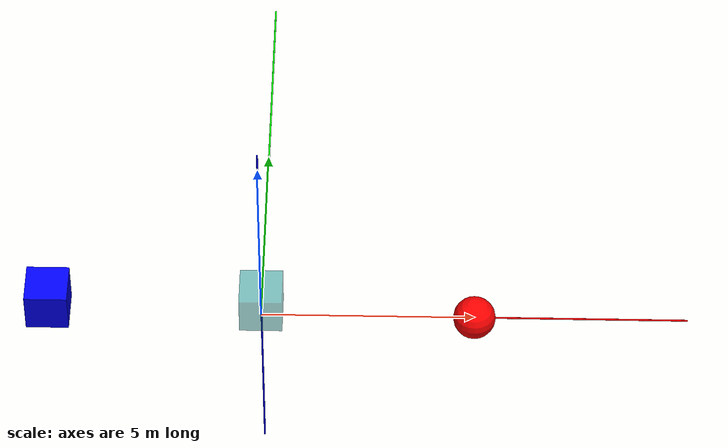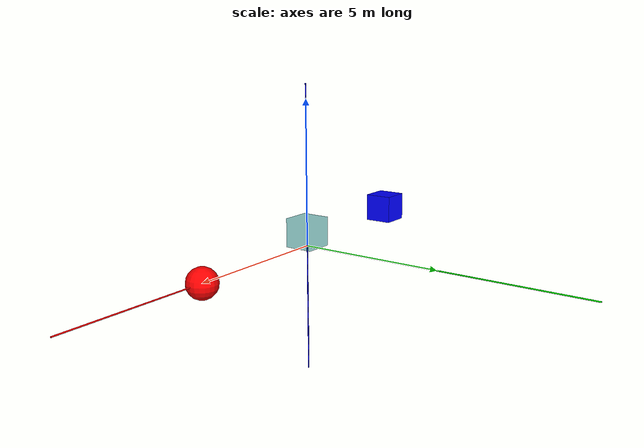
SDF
<?xml version="1.0" ?>
<sdf version="1.8">

    <!--
    To run the gazebo sim from the bridge
    gz sim -v 4 -r src/avoa3d/sdf/single_static.sdf
    -->

    <world name="3d_world">

        <physics name="1ms" type="ode">
            <max_step_size>0.001</max_step_size>
            <real_time_factor>1.0</real_time_factor>
            <real_time_update_rate>1000.0</real_time_update_rate>
        </physics>
        <gravity>0 0 0</gravity> <!--!AAAAAAAAAAA -->

        <plugin
            filename="gz-sim-physics-system"
            name="gz::sim::v8::systems::Physics">
        </plugin>
        <plugin
            filename="libignition-gazebo-user-commands-system.so"
            name="ignition::gazebo::systems::UserCommands">
        </plugin>
        <plugin
            filename="gz-sim-scene-broadcaster-system"
            name="gz::sim::systems::SceneBroadcaster">
        </plugin>

        <model name="world_frame">
            <static>true</static>
            <pose>0 0 0 0 0 0</pose>
            <link name="world_link">
                <!-- X axis -->
                <visual name="x_axis">
                    <geometry>
                        <cylinder>
                            <radius>0.02</radius>
                            <length>10.0</length>
                        </cylinder>
                    </geometry>
                    <material>
                        <ambient>1.0 0.0 0.0 1</ambient>
                        <diffuse>1.0 0.0 0.0 1</diffuse>  <!--red is X-->
                        <specular>1.0 0.0 0.0 1</specular>
                    </material>
                    <pose>5 0 0 0 1.5708 0</pose>
                </visual>

                <!-- Y axis -->
                <visual name="y_axis">
                    <geometry>
                        <cylinder>
                            <radius>0.02</radius>
                            <length>10.0</length>
                        </cylinder>
                    </geometry>
                    <material>
                        <ambient>0.0 1.0 0.0 1</ambient>
                        <diffuse>0.0 1.0 0.0 1</diffuse>   <!--green is Y-->
                        <specular>0.0 1.0 0.0 1</specular>
                    </material>
                    <pose>0 5 0 1.5708 0 0</pose>
                </visual>

                <!-- Z axis -->
                <visual name="z_axis">
                    <geometry>
                        <cylinder>
                            <radius>0.02</radius>
                            <length>10.0</length>
                        </cylinder>
                    </geometry>
                    <material>
                        <ambient>0.0 0.0 1.0 1</ambient>
                        <diffuse>0.0 0.0 1.0 1</diffuse>  <!--blue is Z-->
                        <specular>0.0 0.0 1.0 1</specular>
                    </material>
                    <pose>0 0 0.5 0 0 0</pose>
                </visual>
            </link>
        </model>

        <light type="directional" name="sun">
            <cast_shadows>true</cast_shadows>
            <pose>0 0 10 0 0 0</pose>
            <diffuse>0.8 0.8 0.8 1</diffuse>
            <specular>0.2 0.2 0.2 1</specular>
            <attenuation>
                <range>1000</range>
                <constant>0.9</constant>
                <linear>0.01</linear>
                <quadratic>0.001</quadratic>
            </attenuation>
            <direction>-0.5 0.1 -0.9</direction>
        </light>

        <!--!AGENTE -->
        <model name='agente' canonical_link='chassis'>
            <pose relative_to='world'>-5.0 0 0.5 0 0 0</pose> <!-- Raised z-position -->
            <link name='chassis'>
                <pose relative_to='__model__'>0.0 0 0.0 0 0 0</pose>
                <inertial>
                    <mass>1.14395</mass>
                    <inertia>
                        <ixx>0.095329</ixx>
                        <ixy>0</ixy>
                        <ixz>0</ixz>
                        <iyy>0.381317</iyy>
                        <iyz>0</iyz>
                        <izz>0.476646</izz>
                    </inertia>
                </inertial>
                <visual name='visual'>
                    <geometry>
                        <box>
                            <size>1.0 1.0 1.0</size>
                        </box>
                    </geometry>
                    <material>
                        <ambient>0.0 0.0 1.0 1</ambient>
                        <diffuse>0.0 0.0 1.0 1</diffuse>
                        <specular>0.0 0.0 1.0 1</specular>
                    </material>
                </visual>
                <collision name='collision'>
                    <geometry>
                        <box>
                            <size>1.0 1.0 1.0</size>
                        </box>
                    </geometry>
                </collision>
                <enable_gravity>false</enable_gravity> <!--!AAAAAAAAAAA -->
            </link>
            <!-- plugin to publish-->
             <plugin
                filename="ignition-gazebo-joint-state-publisher-system"
                name="ignition::gazebo::systems::JointStatePublisher">
            </plugin>

            <plugin
                filename="ignition-gazebo-odometry-publisher-system"
                name="ignition::gazebo::systems::OdometryPublisher">
                <dimensions>3</dimensions>
            </plugin>

            <plugin
                filename="ignition-gazebo-velocity-control-system"
                name="ignition::gazebo::systems::VelocityControl">
                <initial_linear>0.0 0 0</initial_linear>
                <initial_angular>0 0 0.0</initial_angular>
            </plugin>

            <plugin
                filename="libignition-gazebo-pose-publisher-system.so"
                name="ignition::gazebo::systems::PosePublisher">
                <topic>/agente/pose</topic> <!-- Adjust the topic as needed -->
                <frame_id>agente</frame_id>  <!-- The frame you want to publish -->
                <update_rate>30</update_rate> <!-- Rate at which to publish the pose -->
            </plugin>

        </model>

        <!-- !OBSTACULO DYNAMICO tpwards agente-->
        <model name='obstacle' canonical_link='obstacle'>
            <static>false</static>
            <pose relative_to='world'>5 0 0 0 0 0</pose>
            <link name='obstacle'>
            <pose relative_to='__model__'>0.0 0 0.0 0 0 0</pose>

            <visual name='visual'>
                <geometry>
                    <sphere>
                        <radius>0.5</radius>
                    </sphere>
                </geometry>
                <material>
                    <ambient>1.0 0.0 0.0 1</ambient>
                    <diffuse>1.0 0.0 0.0 1</diffuse>
                    <specular>1.0 0.0 0.0 1</specular>
                </material>
            </visual>
            <collision name='collision'>
                <geometry>
                    <sphere>
                        <radius>0.5</radius>
                    </sphere>
                </geometry>
            </collision>

            </link>
            <plugin
                filename="ignition-gazebo-velocity-control-system"
                name="ignition::gazebo::systems::VelocityControl">
                <initial_linear> -0.5 0.0 0.0</initial_linear>
                <initial_angular>0 0 0.0</initial_angular>
            </plugin>
            <plugin
                filename="ignition-gazebo-odometry-publisher-system"
                name="ignition::gazebo::systems::OdometryPublisher">
                <dimensions>3</dimensions>
            </plugin>
        </model>

        <!-- !GOAL-->
        <model name='goal' canonical_link='goal'>
            <static>true</static>
            <pose relative_to='world'>0 0 0.5 0.0 0 0</pose>
            <link name='goal'>
                <pose relative_to='__model__'>0.0 0 0.0 0 0 0</pose>

                <visual name='visual'>
                    <geometry>
                        <box>
                            <size>1.0 1.0 1.0</size>
                        </box>
                    </geometry>
                    <material>
                        <ambient>0.0 0.5 0.5 0.5</ambient>
                        <diffuse>0.0 0.5 0.5 0.5</diffuse>
                        <specular>0.0 0.5 0.5 0.5</specular>
                    </material>
                </visual>

            </link>

            <!-- Plugins for the goal model (if needed, usually not for a static goal) -->
            <plugin
                filename="ignition-gazebo-velocity-control-system"
                name="ignition::gazebo::systems::VelocityControl">
                <initial_linear>0.0 0 0</initial_linear>
                <initial_angular>0 0 0.0</initial_angular>
            </plugin>
            <plugin
                filename="ignition-gazebo-odometry-publisher-system"
                name="ignition::gazebo::systems::OdometryPublisher">
                <dimensions>3</dimensions>
            </plugin>
        </model>
    </world>
</sdf>
